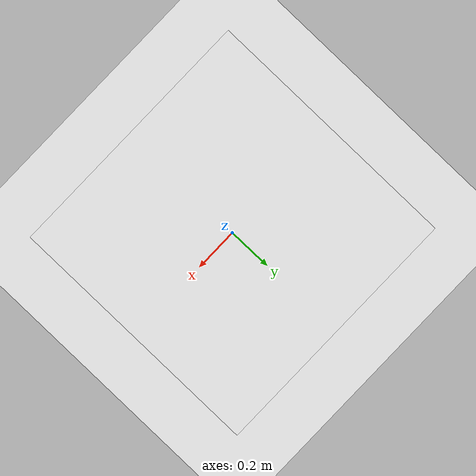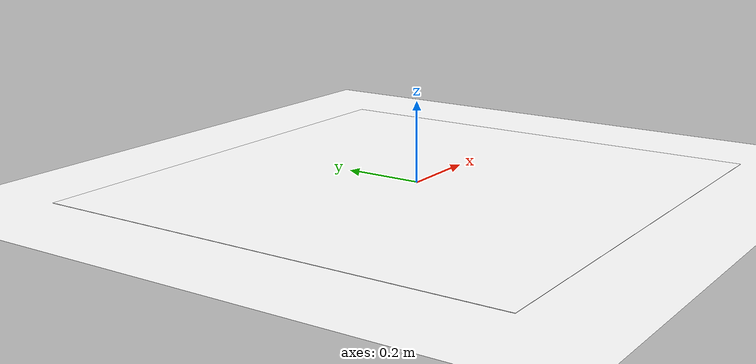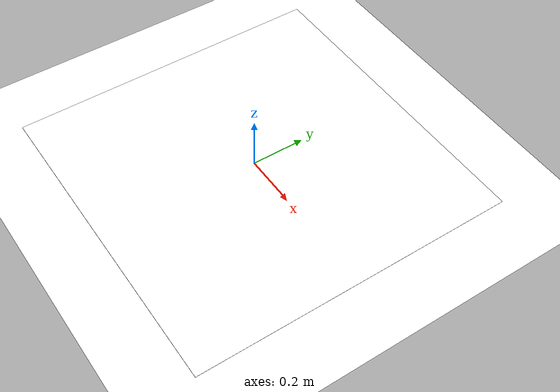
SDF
<sdf version='1.10'>
  <world name='empty'>
    <physics name='1ms' type='ignored'>
      <max_step_size>0.001</max_step_size>
      <real_time_factor>1</real_time_factor>
      <real_time_update_rate>1000</real_time_update_rate>
    </physics>
    <plugin name='gz::sim::systems::Physics' filename='gz-sim-physics-system'/>
    <plugin name='gz::sim::systems::UserCommands' filename='gz-sim-user-commands-system'/>
    <plugin name='gz::sim::systems::SceneBroadcaster' filename='gz-sim-scene-broadcaster-system'/>
    <plugin name='gz::sim::systems::Contact' filename='gz-sim-contact-system'/>
    <plugin name='gz::sim::systems::Sensors' filename='gz-sim-sensors-system'>
      <render_engine>ogre2</render_engine>
      <ogre2>
        <hdr_enabled>false</hdr_enabled>
        <auto_exposure>false</auto_exposure>
      </ogre2>
    </plugin>

    <gravity>0 0 -9.8000000000000007</gravity>
    <scene>
      <grid>false</grid>
      <ambient>0.3 0.3 0.3 1</ambient>
      <background>0.699999988 0.699999988 0.699999988 1</background>
      <shadows>false</shadows>
    </scene>
    <magnetic_field>5.5644999999999998e-06 2.2875799999999999e-05 -4.2388400000000002e-05</magnetic_field>
    <atmosphere type='adiabatic'/>
    <model name='ground_plane'>
      <static>true</static>
      <link name='link'>
        <collision name='collision'>
          <geometry>
            <plane>
              <normal>0 0 1</normal>
              <size>5 5</size>
            </plane>
          </geometry>
          <surface>
            <friction>
              <ode/>
            </friction>
            <bounce/>
            <contact/>
          </surface>
        </collision>
        <visual name='visual'>
          <geometry>
            <plane>
              <normal>0 0 1</normal>
              <size>5 5</size>
            </plane>
          </geometry>
          <material>
            <ambient>1 1 1 1</ambient>
            <diffuse>1 1 1 1</diffuse>
            <specular>0 0 0 1</specular>
          </material>
        </visual>
        <pose>0 0 0 0 0 0</pose>
        <inertial>
          <pose>0 0 0 0 0 0</pose>
          <mass>1</mass>
          <inertia>
            <ixx>1</ixx>
            <ixy>0</ixy>
            <ixz>0</ixz>
            <iyy>1</iyy>
            <iyz>0</iyz>
            <izz>1</izz>
          </inertia>
        </inertial>
        <enable_wind>false</enable_wind>
      </link>
      <pose>0 0 0 0 0 0</pose>
      <self_collide>false</self_collide>
    </model>
    <model name='textured_model'>
      <static>true</static>
      <link name='link'>
        <collision name='collision'>
          <geometry>
            <box>
              <size>1.2 1.2 0.01</size>
            </box>
          </geometry>
          <surface>
            <friction>
              <ode/>
            </friction>
            <bounce/>
            <contact/>
          </surface>
        </collision>
        <visual name='visual'>
          <geometry>
            <box>
              <size>1.2 1.2 0.001</size>
            </box>
          </geometry>
          <material>
            <ambient>1 1 1 1</ambient>
            <diffuse>1 1 1 1</diffuse>
            <specular>0.100000001 0.100000001 0.100000001 1</specular>
            <pbr>
              <metal>
                <albedo_map>/home/tnk05/linetracecar/src/robot_desc/models/fieldmaterial/materials/textures/field.png</albedo_map>
                <metalness>0.0</metalness>
                <roughness>1.0</roughness>
              </metal>
            </pbr>
          </material>
        </visual>
        <pose>0 0 0 0 0 0</pose>
        <inertial>
          <pose>0 0 0 0 0 0</pose>
          <mass>1</mass>
          <inertia>
            <ixx>1</ixx>
            <ixy>0</ixy>
            <ixz>0</ixz>
            <iyy>1</iyy>
            <iyz>0</iyz>
            <izz>1</izz>
          </inertia>
        </inertial>
        <enable_wind>false</enable_wind>
      </link>
      <pose>0 0 0 0 0 0</pose>
      <self_collide>false</self_collide>
    </model>

    <light name='sun' type='directional'>
      <pose>0 0 10 0 0 0</pose>
      <cast_shadows>false</cast_shadows>
      <intensity>1</intensity>
      <direction>-0.10000000000000001 0.050000000000000003 -0.29999999999999999</direction>
      <diffuse>0.899999976 0.899999976 0.899999976 1</diffuse>
      <specular>0 0 0 1</specular>
      <attenuation>
        <range>10</range>
        <linear>1</linear>
        <constant>1</constant>
        <quadratic>0</quadratic>
      </attenuation>
      <spot>
        <inner_angle>0</inner_angle>
        <outer_angle>0</outer_angle>
        <falloff>0</falloff>
      </spot>
    </light>
  </world>
</sdf>
